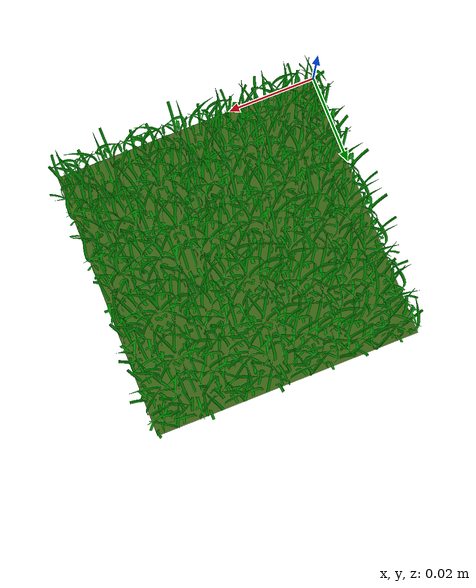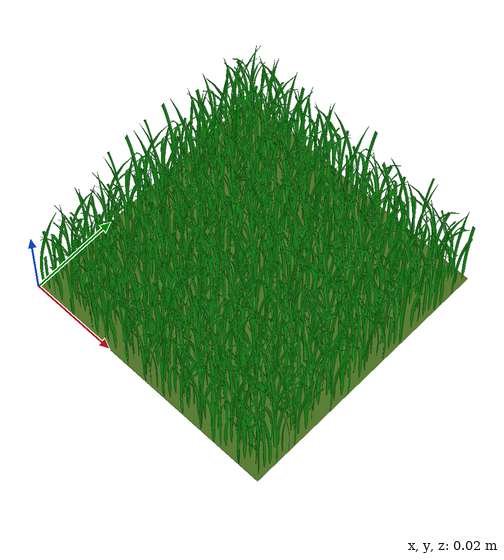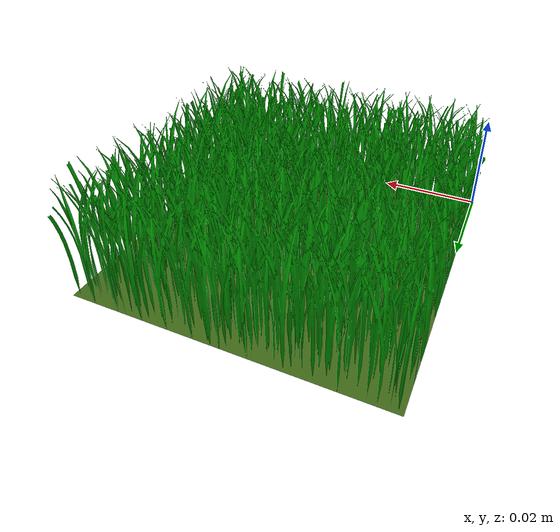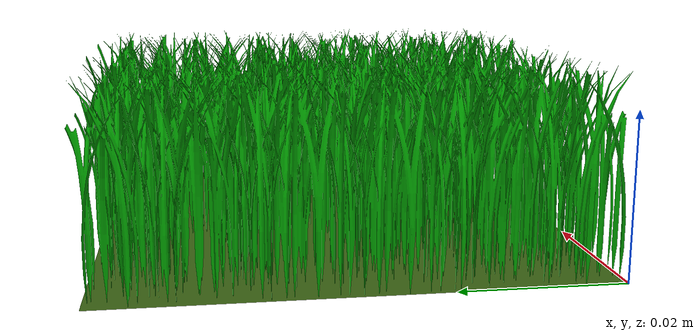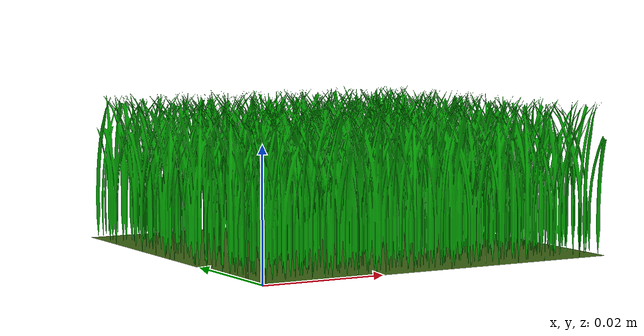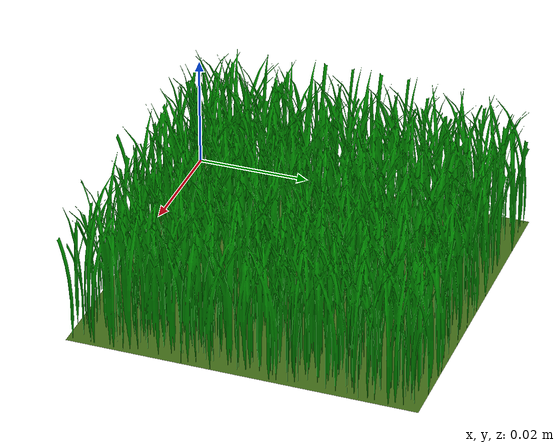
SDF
<?xml version='1.0'?>
<sdf version='1.7'>
  <model name='grass2'>
	<static>true</static>
    <link name='link_0'>

		<collision name="collision">
		<geometry>
			<mesh>
				<uri>model://grass2/mesh/model.dae</uri>
				<scale>0 0 0</scale>
			</mesh>
		</geometry>
		</collision>

		<visual name="visual">
		<cast_shadows>true</cast_shadows>
		<geometry>
			<mesh>
				<uri>model://grass2/mesh/model.dae</uri>
				<scale>0.2 0.2 0.2</scale>
			</mesh>
		</geometry>
		</visual>
    </link>
  </model>
</sdf>
